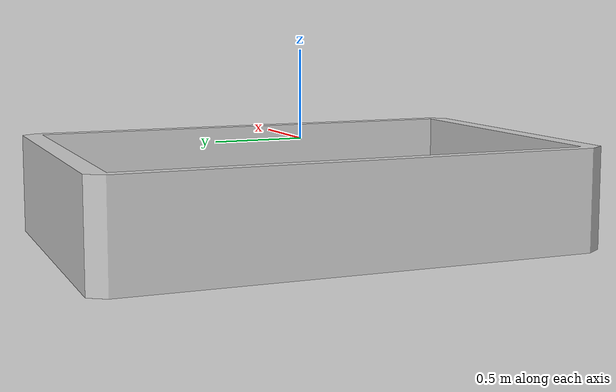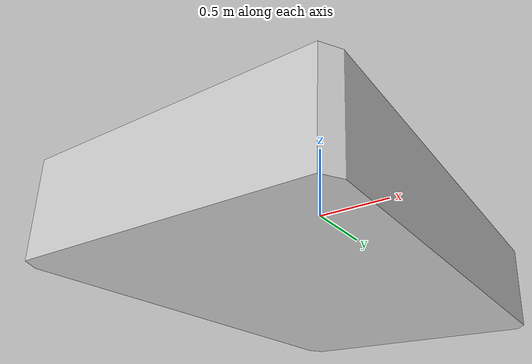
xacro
<?xml version="1.0"?>

<robot name="pool" xmlns:xacro="http://www.ros.org/wiki/xacro" >
  <xacro:arg name="debug" default="0"/>
  <xacro:arg name="namespace" default="pool"/>
  <xacro:include filename="$(find pool_description)/urdf/pool.urdf.xacro"/>
  <xacro:pool namespace="$(arg namespace)" debug="$(arg debug)"/>
</robot>

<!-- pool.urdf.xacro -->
<robot name="pool" xmlns:xacro="http://www.ros.org/wiki/xacro">

  <xacro:property name="PI" value="3.141592" />
  <xacro:property name="body" value="file://$(find pool_description)/mesh/pool.dae"/>

  <xacro:macro name="pool" params="namespace debug">

  <!-- Links. -->
  <link name="$(arg namespace)/base_link">
    <visual>
      <origin xyz="0. 0 -0.2" rpy="0 0 ${-pi/2}"/>
      <geometry>
        <mesh filename="${body}" scale="1 1 1"/>
      </geometry>
    </visual>
  </link>

  </xacro:macro>

</robot>
